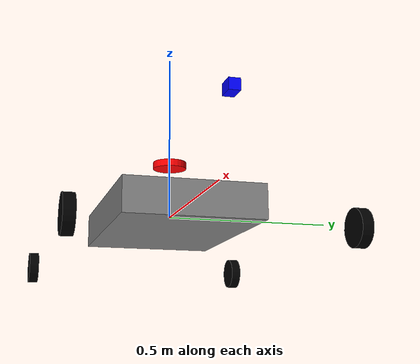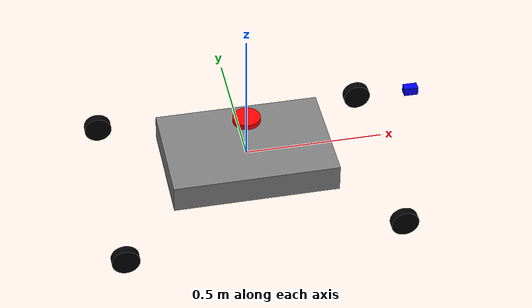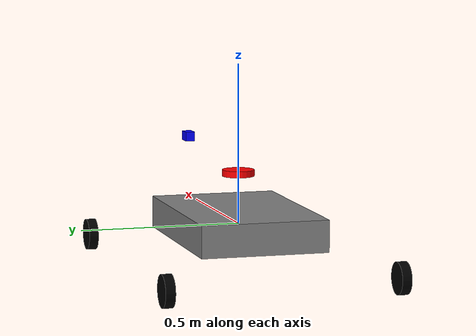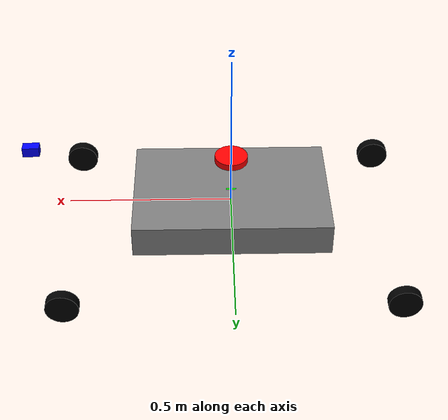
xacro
<?xml version="1.0"?>
<robot xmlns:xacro="http://ros.org/wiki/xacro" name="my_car">

  <!-- ==== Properties ==== -->
  <xacro:property name="wheel_radius" value="0.05"/>
  <xacro:property name="wheel_length" value="0.03"/>
  <xacro:property name="body_size" value="0.6 0.4 0.1"/>
  <xacro:property name="wheel_z" value="-0.05"/>
  <xacro:property name="wheel_offset_x" value="0.25"/>
  <xacro:property name="wheel_offset_y" value="0.18"/>

  <!-- ==== Colors ==== -->
  <material name="gray"><color rgba="0.5 0.5 0.5 1"/></material>
  <material name="black"><color rgba="0 0 0 1"/></material>
  <material name="blue"><color rgba="0 0 1 1"/></material>
  <material name="red"><color rgba="1 0 0 1"/></material>
  <material name="green"><color rgba="0 1 0 1"/></material>

  <!-- ==== Base Link ==== -->
  <link name="base_link">
    <visual>
      <geometry>
        <box size="${body_size}"/>
      </geometry>
      <material name="gray"/>
    </visual>
  </link>

  <!-- ==== Wheel Macro ==== -->
  <xacro:macro name="wheel" params="prefix x y">
    <link name="${prefix}_wheel">
      <visual>
        <geometry>
          <cylinder radius="${wheel_radius}" length="${wheel_length}"/>
        </geometry>
        <origin xyz="${x} ${y} ${wheel_z}" rpy="1.5708 0 0"/>
        <material name="black"/>
      </visual>
    </link>

    <joint name="${prefix}_wheel_joint" type="continuous">
      <parent link="base_link"/>
      <child link="${prefix}_wheel"/>
      <origin xyz="${x} ${y} ${wheel_z}" rpy="0 0 0"/>
      <axis xyz="0 1 0"/>
    </joint>
  </xacro:macro>

  <!-- ==== Wheels (4x) ==== -->
  <xacro:wheel prefix="left_front"  x="${wheel_offset_x}"  y="-${wheel_offset_y}"/>
  <xacro:wheel prefix="right_front" x="${wheel_offset_x}"  y="${wheel_offset_y}"/>
  <xacro:wheel prefix="left_rear"   x="-${wheel_offset_x}" y="-${wheel_offset_y}"/>
  <xacro:wheel prefix="right_rear"  x="-${wheel_offset_x}" y="${wheel_offset_y}"/>

  <!-- ==== Camera ==== -->
  <link name="camera_link">
    <visual>
      <geometry>
        <box size="0.05 0.03 0.03"/>
      </geometry>
      <origin xyz="0.3 0 0.1" rpy="0 0 0"/>
      <material name="blue"/>
    </visual>
  </link>

  <joint name="camera_joint" type="fixed">
    <parent link="base_link"/>
    <child link="camera_link"/>
    <origin xyz="0.3 0 0.1" rpy="0 0 0"/>
  </joint>

  <!-- ==== Lidar ==== -->
  <link name="lidar_link">
    <visual>
      <geometry>
        <cylinder radius="0.05" length="0.02"/>
      </geometry>
      <origin xyz="0 0 0.08" rpy="0 0 0"/>
      <material name="red"/>
    </visual>
  </link>

  <joint name="lidar_joint" type="fixed">
    <parent link="base_link"/>
    <child link="lidar_link"/>
    <origin xyz="0 0 0.08" rpy="0 0 0"/>
  </joint>

  <!-- ==== IMU ==== -->
  <link name="imu_link">
    <visual>
      <geometry>
        <box size="0.03 0.03 0.02"/>
      </geometry>
      <origin xyz="0 0 0.02" rpy="0 0 0"/>
      <material name="green"/>
    </visual>
  </link>

  <joint name="imu_joint" type="fixed">
    <parent link="base_link"/>
    <child link="imu_link"/>
    <origin xyz="0 0 0.02" rpy="0 0 0"/>
  </joint>

</robot>
